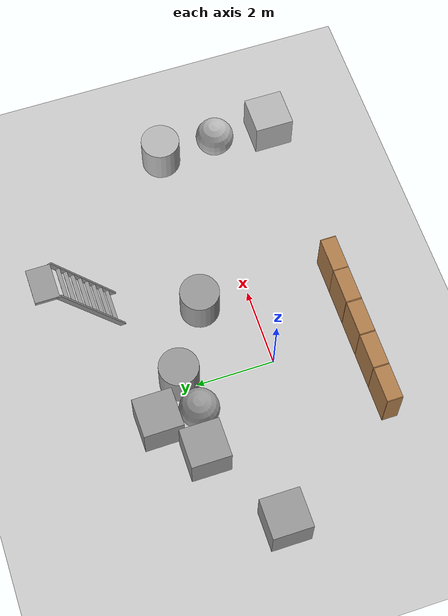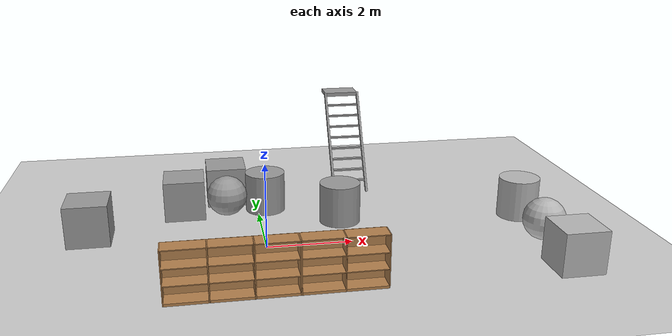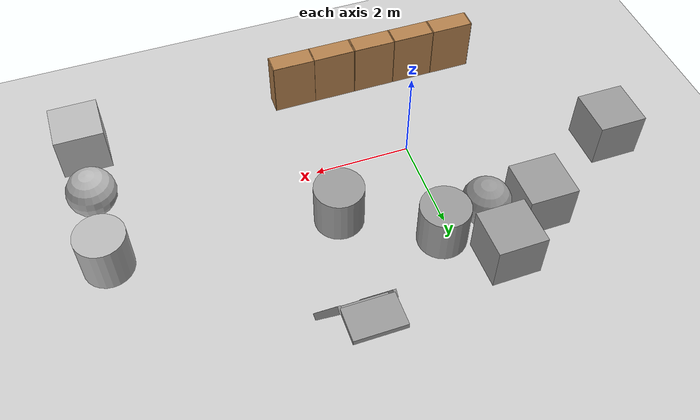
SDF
<sdf version="1.6">
 <world name="default">
  <light name="sun" type="directional">
   <pose>0 0 10 0 -0 0</pose>
   <diffuse>0.8 0.8 0.8 1</diffuse>
   <specular>0.1 0.1 0.1 1</specular>
   <attenuation>
    <range>1000</range>
    <constant>0.9</constant>
    <linear>0.01</linear>
    <quadratic>0.001</quadratic>
   </attenuation>
   <direction>-0.5 0.5 -1</direction>
  </light>
  <model name="ground_plane">
   <static>1</static>
   <link name="link">
    <collision name="collision">
     <geometry><plane><normal>0 0 1</normal><size>100 100</size></plane></geometry>
     <surface><friction><ode><mu>100</mu><mu2>50</mu2></ode></friction></surface>
    </collision>
    <visual name="visual">
     <cast_shadows>0</cast_shadows>
     <geometry><plane><normal>0 0 1</normal><size>100 100</size></plane></geometry>
     <material>
      <script><uri>file://media/materials/scripts/gazebo.material</uri><name>Gazebo/Grey</name></script>
     </material>
    </visual>
   </link>
  </model>
  <gravity>0 0 -9.8</gravity>
  <magnetic_field>6e-06 2.3e-05 -4.2e-05</magnetic_field>
  <atmosphere type="adiabatic"/>
  <physics name="default_physics" default="0" type="ode">
   <max_step_size>0.001</max_step_size>
   <real_time_factor>1</real_time_factor>
   <real_time_update_rate>1000</real_time_update_rate>
  </physics>
  <scene><ambient>0.4 0.4 0.4 1</ambient><background>0.7 0.7 0.7 1</background><shadows>1</shadows></scene>
  <spherical_coordinates>
   <surface_model>EARTH_WGS84</surface_model>
   <latitude_deg>0</latitude_deg>
   <longitude_deg>0</longitude_deg>
   <elevation>0</elevation>
   <heading_deg>0</heading_deg>
  </spherical_coordinates>
  <model name="bookshelf">
   <static>1</static>
   <link name="link">
    <inertial><mass>1</mass></inertial>
    <collision name="back">
     <pose>0 0.005 0.6 0 -0 0</pose>
     <geometry><box><size>0.9 0.01 1.2</size></box></geometry>
    </collision>
    <visual name="visual1">
     <pose>0 0.005 0.6 0 -0 0</pose>
     <geometry><box><size>0.9 0.01 1.2</size></box></geometry>
     <material>
      <script><uri>file://media/materials/scripts/gazebo.material</uri><name>Gazebo/Wood</name></script>
     </material>
    </visual>
    <collision name="left_side">
     <pose>0.45 -0.195 0.6 0 -0 0</pose>
     <geometry><box><size>0.02 0.4 1.2</size></box></geometry>
    </collision>
    <visual name="visual2">
     <pose>0.45 -0.195 0.6 0 -0 0</pose>
     <geometry><box><size>0.02 0.4 1.2</size></box></geometry>
     <material>
      <script><uri>file://media/materials/scripts/gazebo.material</uri><name>Gazebo/Wood</name></script>
     </material>
    </visual>
    <collision name="right_side">
     <pose>-0.45 -0.195 0.6 0 -0 0</pose>
     <geometry><box><size>0.02 0.4 1.2</size></box></geometry>
    </collision>
    <visual name="visual3">
     <pose>-0.45 -0.195 0.6 0 -0 0</pose>
     <geometry><box><size>0.02 0.4 1.2</size></box></geometry>
     <material>
      <script><uri>file://media/materials/scripts/gazebo.material</uri><name>Gazebo/Wood</name></script>
     </material>
    </visual>
    <collision name="bottom">
     <pose>0 -0.195 0.03 0 -0 0</pose>
     <geometry><box><size>0.88 0.4 0.06</size></box></geometry>
    </collision>
    <visual name="visual4">
     <pose>0 -0.195 0.03 0 -0 0</pose>
     <geometry><box><size>0.88 0.4 0.06</size></box></geometry>
     <material>
      <script><uri>file://media/materials/scripts/gazebo.material</uri><name>Gazebo/Wood</name></script>
     </material>
    </visual>
    <collision name="top">
     <pose>0 -0.195 1.19 0 -0 0</pose>
     <geometry><box><size>0.88 0.4 0.02</size></box></geometry>
    </collision>
    <visual name="visual5">
     <pose>0 -0.195 1.19 0 -0 0</pose>
     <geometry><box><size>0.88 0.4 0.02</size></box></geometry>
     <material>
      <script><uri>file://media/materials/scripts/gazebo.material</uri><name>Gazebo/Wood</name></script>
     </material>
    </visual>
    <collision name="low_shelf">
     <pose>0 -0.195 0.43 0 -0 0</pose>
     <geometry><box><size>0.88 0.4 0.02</size></box></geometry>
    </collision>
    <visual name="visual6">
     <pose>0 -0.195 0.43 0 -0 0</pose>
     <geometry><box><size>0.88 0.4 0.02</size></box></geometry>
     <material>
      <script><uri>file://media/materials/scripts/gazebo.material</uri><name>Gazebo/Wood</name></script>
     </material>
    </visual>
    <collision name="high_shelf">
     <pose>0 -0.195 0.8 0 -0 0</pose>
     <geometry><box><size>0.88 0.4 0.02</size></box></geometry>
    </collision>
    <visual name="visual7">
     <pose>0 -0.195 0.8 0 -0 0</pose>
     <geometry><box><size>0.88 0.4 0.02</size></box></geometry>
     <material>
      <script><uri>file://media/materials/scripts/gazebo.material</uri><name>Gazebo/Wood</name></script>
     </material>
    </visual>
   </link>
   <pose>0.921 -2 0 0 -0 0</pose>
  </model>
  <model name="bookshelf_clone">
   <static>1</static>
   <link name="link">
    <inertial><mass>1</mass></inertial>
    <collision name="back">
     <pose>0 0.005 0.6 0 -0 0</pose>
     <geometry><box><size>0.9 0.01 1.2</size></box></geometry>
    </collision>
    <visual name="visual1">
     <pose>0 0.005 0.6 0 -0 0</pose>
     <geometry><box><size>0.9 0.01 1.2</size></box></geometry>
     <material>
      <script><uri>file://media/materials/scripts/gazebo.material</uri><name>Gazebo/Wood</name></script>
     </material>
    </visual>
    <collision name="left_side">
     <pose>0.45 -0.195 0.6 0 -0 0</pose>
     <geometry><box><size>0.02 0.4 1.2</size></box></geometry>
    </collision>
    <visual name="visual2">
     <pose>0.45 -0.195 0.6 0 -0 0</pose>
     <geometry><box><size>0.02 0.4 1.2</size></box></geometry>
     <material>
      <script><uri>file://media/materials/scripts/gazebo.material</uri><name>Gazebo/Wood</name></script>
     </material>
    </visual>
    <collision name="right_side">
     <pose>-0.45 -0.195 0.6 0 -0 0</pose>
     <geometry><box><size>0.02 0.4 1.2</size></box></geometry>
    </collision>
    <visual name="visual3">
     <pose>-0.45 -0.195 0.6 0 -0 0</pose>
     <geometry><box><size>0.02 0.4 1.2</size></box></geometry>
     <material>
      <script><uri>file://media/materials/scripts/gazebo.material</uri><name>Gazebo/Wood</name></script>
     </material>
    </visual>
    <collision name="bottom">
     <pose>0 -0.195 0.03 0 -0 0</pose>
     <geometry><box><size>0.88 0.4 0.06</size></box></geometry>
    </collision>
    <visual name="visual4">
     <pose>0 -0.195 0.03 0 -0 0</pose>
     <geometry><box><size>0.88 0.4 0.06</size></box></geometry>
     <material>
      <script><uri>file://media/materials/scripts/gazebo.material</uri><name>Gazebo/Wood</name></script>
     </material>
    </visual>
    <collision name="top">
     <pose>0 -0.195 1.19 0 -0 0</pose>
     <geometry><box><size>0.88 0.4 0.02</size></box></geometry>
    </collision>
    <visual name="visual5">
     <pose>0 -0.195 1.19 0 -0 0</pose>
     <geometry><box><size>0.88 0.4 0.02</size></box></geometry>
     <material>
      <script><uri>file://media/materials/scripts/gazebo.material</uri><name>Gazebo/Wood</name></script>
     </material>
    </visual>
    <collision name="low_shelf">
     <pose>0 -0.195 0.43 0 -0 0</pose>
     <geometry><box><size>0.88 0.4 0.02</size></box></geometry>
    </collision>
    <visual name="visual6">
     <pose>0 -0.195 0.43 0 -0 0</pose>
     <geometry><box><size>0.88 0.4 0.02</size></box></geometry>
     <material>
      <script><uri>file://media/materials/scripts/gazebo.material</uri><name>Gazebo/Wood</name></script>
     </material>
    </visual>
    <collision name="high_shelf">
     <pose>0 -0.195 0.8 0 -0 0</pose>
     <geometry><box><size>0.88 0.4 0.02</size></box></geometry>
    </collision>
    <visual name="visual7">
     <pose>0 -0.195 0.8 0 -0 0</pose>
     <geometry><box><size>0.88 0.4 0.02</size></box></geometry>
     <material>
      <script><uri>file://media/materials/scripts/gazebo.material</uri><name>Gazebo/Wood</name></script>
     </material>
    </visual>
   </link>
   <pose>-0.912 -2 0 0 -0 0</pose>
  </model>
  <model name="bookshelf_clone_0">
   <static>1</static>
   <link name="link">
    <inertial><mass>1</mass></inertial>
    <collision name="back">
     <pose>0 0.005 0.6 0 -0 0</pose>
     <geometry><box><size>0.9 0.01 1.2</size></box></geometry>
    </collision>
    <visual name="visual1">
     <pose>0 0.005 0.6 0 -0 0</pose>
     <geometry><box><size>0.9 0.01 1.2</size></box></geometry>
     <material>
      <script><uri>file://media/materials/scripts/gazebo.material</uri><name>Gazebo/Wood</name></script>
     </material>
    </visual>
    <collision name="left_side">
     <pose>0.45 -0.195 0.6 0 -0 0</pose>
     <geometry><box><size>0.02 0.4 1.2</size></box></geometry>
    </collision>
    <visual name="visual2">
     <pose>0.45 -0.195 0.6 0 -0 0</pose>
     <geometry><box><size>0.02 0.4 1.2</size></box></geometry>
     <material>
      <script><uri>file://media/materials/scripts/gazebo.material</uri><name>Gazebo/Wood</name></script>
     </material>
    </visual>
    <collision name="right_side">
     <pose>-0.45 -0.195 0.6 0 -0 0</pose>
     <geometry><box><size>0.02 0.4 1.2</size></box></geometry>
    </collision>
    <visual name="visual3">
     <pose>-0.45 -0.195 0.6 0 -0 0</pose>
     <geometry><box><size>0.02 0.4 1.2</size></box></geometry>
     <material>
      <script><uri>file://media/materials/scripts/gazebo.material</uri><name>Gazebo/Wood</name></script>
     </material>
    </visual>
    <collision name="bottom">
     <pose>0 -0.195 0.03 0 -0 0</pose>
     <geometry><box><size>0.88 0.4 0.06</size></box></geometry>
    </collision>
    <visual name="visual4">
     <pose>0 -0.195 0.03 0 -0 0</pose>
     <geometry><box><size>0.88 0.4 0.06</size></box></geometry>
     <material>
      <script><uri>file://media/materials/scripts/gazebo.material</uri><name>Gazebo/Wood</name></script>
     </material>
    </visual>
    <collision name="top">
     <pose>0 -0.195 1.19 0 -0 0</pose>
     <geometry><box><size>0.88 0.4 0.02</size></box></geometry>
    </collision>
    <visual name="visual5">
     <pose>0 -0.195 1.19 0 -0 0</pose>
     <geometry><box><size>0.88 0.4 0.02</size></box></geometry>
     <material>
      <script><uri>file://media/materials/scripts/gazebo.material</uri><name>Gazebo/Wood</name></script>
     </material>
    </visual>
    <collision name="low_shelf">
     <pose>0 -0.195 0.43 0 -0 0</pose>
     <geometry><box><size>0.88 0.4 0.02</size></box></geometry>
    </collision>
    <visual name="visual6">
     <pose>0 -0.195 0.43 0 -0 0</pose>
     <geometry><box><size>0.88 0.4 0.02</size></box></geometry>
     <material>
      <script><uri>file://media/materials/scripts/gazebo.material</uri><name>Gazebo/Wood</name></script>
     </material>
    </visual>
    <collision name="high_shelf">
     <pose>0 -0.195 0.8 0 -0 0</pose>
     <geometry><box><size>0.88 0.4 0.02</size></box></geometry>
    </collision>
    <visual name="visual7">
     <pose>0 -0.195 0.8 0 -0 0</pose>
     <geometry><box><size>0.88 0.4 0.02</size></box></geometry>
     <material>
      <script><uri>file://media/materials/scripts/gazebo.material</uri><name>Gazebo/Wood</name></script>
     </material>
    </visual>
   </link>
   <pose>1.824 -2 0 0 -0 0</pose>
  </model>
  <model name="bookshelf_clone_0_clone">
   <static>1</static>
   <link name="link">
    <inertial><mass>1</mass></inertial>
    <collision name="back">
     <pose>0 0.005 0.6 0 -0 0</pose>
     <geometry><box><size>0.9 0.01 1.2</size></box></geometry>
    </collision>
    <visual name="visual1">
     <pose>0 0.005 0.6 0 -0 0</pose>
     <geometry><box><size>0.9 0.01 1.2</size></box></geometry>
     <material>
      <script><uri>file://media/materials/scripts/gazebo.material</uri><name>Gazebo/Wood</name></script>
     </material>
    </visual>
    <collision name="left_side">
     <pose>0.45 -0.195 0.6 0 -0 0</pose>
     <geometry><box><size>0.02 0.4 1.2</size></box></geometry>
    </collision>
    <visual name="visual2">
     <pose>0.45 -0.195 0.6 0 -0 0</pose>
     <geometry><box><size>0.02 0.4 1.2</size></box></geometry>
     <material>
      <script><uri>file://media/materials/scripts/gazebo.material</uri><name>Gazebo/Wood</name></script>
     </material>
    </visual>
    <collision name="right_side">
     <pose>-0.45 -0.195 0.6 0 -0 0</pose>
     <geometry><box><size>0.02 0.4 1.2</size></box></geometry>
    </collision>
    <visual name="visual3">
     <pose>-0.45 -0.195 0.6 0 -0 0</pose>
     <geometry><box><size>0.02 0.4 1.2</size></box></geometry>
     <material>
      <script><uri>file://media/materials/scripts/gazebo.material</uri><name>Gazebo/Wood</name></script>
     </material>
    </visual>
    <collision name="bottom">
     <pose>0 -0.195 0.03 0 -0 0</pose>
     <geometry><box><size>0.88 0.4 0.06</size></box></geometry>
    </collision>
    <visual name="visual4">
     <pose>0 -0.195 0.03 0 -0 0</pose>
     <geometry><box><size>0.88 0.4 0.06</size></box></geometry>
     <material>
      <script><uri>file://media/materials/scripts/gazebo.material</uri><name>Gazebo/Wood</name></script>
     </material>
    </visual>
    <collision name="top">
     <pose>0 -0.195 1.19 0 -0 0</pose>
     <geometry><box><size>0.88 0.4 0.02</size></box></geometry>
    </collision>
    <visual name="visual5">
     <pose>0 -0.195 1.19 0 -0 0</pose>
     <geometry><box><size>0.88 0.4 0.02</size></box></geometry>
     <material>
      <script><uri>file://media/materials/scripts/gazebo.material</uri><name>Gazebo/Wood</name></script>
     </material>
    </visual>
    <collision name="low_shelf">
     <pose>0 -0.195 0.43 0 -0 0</pose>
     <geometry><box><size>0.88 0.4 0.02</size></box></geometry>
    </collision>
    <visual name="visual6">
     <pose>0 -0.195 0.43 0 -0 0</pose>
     <geometry><box><size>0.88 0.4 0.02</size></box></geometry>
     <material>
      <script><uri>file://media/materials/scripts/gazebo.material</uri><name>Gazebo/Wood</name></script>
     </material>
    </visual>
    <collision name="high_shelf">
     <pose>0 -0.195 0.8 0 -0 0</pose>
     <geometry><box><size>0.88 0.4 0.02</size></box></geometry>
    </collision>
    <visual name="visual7">
     <pose>0 -0.195 0.8 0 -0 0</pose>
     <geometry><box><size>0.88 0.4 0.02</size></box></geometry>
     <material>
      <script><uri>file://media/materials/scripts/gazebo.material</uri><name>Gazebo/Wood</name></script>
     </material>
    </visual>
   </link>
   <pose>0 -2 0 0 -0 0</pose>
  </model>
  <model name="bookshelf_clone_0_clone_0">
   <static>1</static>
   <link name="link">
    <inertial><mass>1</mass></inertial>
    <collision name="back">
     <pose>0 0.005 0.6 0 -0 0</pose>
     <geometry><box><size>0.9 0.01 1.2</size></box></geometry>
    </collision>
    <visual name="visual1">
     <pose>0 0.005 0.6 0 -0 0</pose>
     <geometry><box><size>0.9 0.01 1.2</size></box></geometry>
     <material>
      <script><uri>file://media/materials/scripts/gazebo.material</uri><name>Gazebo/Wood</name></script>
     </material>
    </visual>
    <collision name="left_side">
     <pose>0.45 -0.195 0.6 0 -0 0</pose>
     <geometry><box><size>0.02 0.4 1.2</size></box></geometry>
    </collision>
    <visual name="visual2">
     <pose>0.45 -0.195 0.6 0 -0 0</pose>
     <geometry><box><size>0.02 0.4 1.2</size></box></geometry>
     <material>
      <script><uri>file://media/materials/scripts/gazebo.material</uri><name>Gazebo/Wood</name></script>
     </material>
    </visual>
    <collision name="right_side">
     <pose>-0.45 -0.195 0.6 0 -0 0</pose>
     <geometry><box><size>0.02 0.4 1.2</size></box></geometry>
    </collision>
    <visual name="visual3">
     <pose>-0.45 -0.195 0.6 0 -0 0</pose>
     <geometry><box><size>0.02 0.4 1.2</size></box></geometry>
     <material>
      <script><uri>file://media/materials/scripts/gazebo.material</uri><name>Gazebo/Wood</name></script>
     </material>
    </visual>
    <collision name="bottom">
     <pose>0 -0.195 0.03 0 -0 0</pose>
     <geometry><box><size>0.88 0.4 0.06</size></box></geometry>
    </collision>
    <visual name="visual4">
     <pose>0 -0.195 0.03 0 -0 0</pose>
     <geometry><box><size>0.88 0.4 0.06</size></box></geometry>
     <material>
      <script><uri>file://media/materials/scripts/gazebo.material</uri><name>Gazebo/Wood</name></script>
     </material>
    </visual>
    <collision name="top">
     <pose>0 -0.195 1.19 0 -0 0</pose>
     <geometry><box><size>0.88 0.4 0.02</size></box></geometry>
    </collision>
    <visual name="visual5">
     <pose>0 -0.195 1.19 0 -0 0</pose>
     <geometry><box><size>0.88 0.4 0.02</size></box></geometry>
     <material>
      <script><uri>file://media/materials/scripts/gazebo.material</uri><name>Gazebo/Wood</name></script>
     </material>
    </visual>
    <collision name="low_shelf">
     <pose>0 -0.195 0.43 0 -0 0</pose>
     <geometry><box><size>0.88 0.4 0.02</size></box></geometry>
    </collision>
    <visual name="visual6">
     <pose>0 -0.195 0.43 0 -0 0</pose>
     <geometry><box><size>0.88 0.4 0.02</size></box></geometry>
     <material>
      <script><uri>file://media/materials/scripts/gazebo.material</uri><name>Gazebo/Wood</name></script>
     </material>
    </visual>
    <collision name="high_shelf">
     <pose>0 -0.195 0.8 0 -0 0</pose>
     <geometry><box><size>0.88 0.4 0.02</size></box></geometry>
    </collision>
    <visual name="visual7">
     <pose>0 -0.195 0.8 0 -0 0</pose>
     <geometry><box><size>0.88 0.4 0.02</size></box></geometry>
     <material>
      <script><uri>file://media/materials/scripts/gazebo.material</uri><name>Gazebo/Wood</name></script>
     </material>
    </visual>
   </link>
   <pose>-1.824 -2 0 0 -0 0</pose>
  </model>
  <model name="unit_box_0">
   <pose>-1.82716 2.37173 0.5 0 -0 0</pose>
   <link name="link">
    <inertial>
     <mass>1</mass>
     <inertia>
      <ixx>0.166667</ixx>
      <ixy>0</ixy>
      <ixz>0</ixz>
      <iyy>0.166667</iyy>
      <iyz>0</iyz>
      <izz>0.166667</izz>
     </inertia>
    </inertial>
    <collision name="collision"><geometry><box><size>1 1 1</size></box></geometry></collision>
    <visual name="visual">
     <geometry><box><size>1 1 1</size></box></geometry>
     <material>
      <script><name>Gazebo/Grey</name><uri>file://media/materials/scripts/gazebo.material</uri></script>
     </material>
    </visual>
   </link>
  </model>
  <model name="unit_box_1">
   <pose>-4.02409 1.13922 0.5 0 -0 0</pose>
   <link name="link">
    <inertial>
     <mass>1</mass>
     <inertia>
      <ixx>0.166667</ixx>
      <ixy>0</ixy>
      <ixz>0</ixz>
      <iyy>0.166667</iyy>
      <iyz>0</iyz>
      <izz>0.166667</izz>
     </inertia>
    </inertial>
    <collision name="collision"><geometry><box><size>1 1 1</size></box></geometry></collision>
    <visual name="visual">
     <geometry><box><size>1 1 1</size></box></geometry>
     <material>
      <script><name>Gazebo/Grey</name><uri>file://media/materials/scripts/gazebo.material</uri></script>
     </material>
    </visual>
   </link>
  </model>
  <model name="unit_cylinder_0">
   <pose>1.94796 1.28763 0.499991 0 -0 0</pose>
   <link name="link">
    <inertial>
     <mass>1</mass>
     <inertia><ixx>0.145833</ixx><ixy>0</ixy><ixz>0</ixz><iyy>0.145833</iyy><iyz>0</iyz><izz>0.125</izz></inertia>
    </inertial>
    <collision name="collision">
     <geometry><cylinder><radius>0.5</radius><length>1</length></cylinder></geometry>
    </collision>
    <visual name="visual">
     <geometry><cylinder><radius>0.5</radius><length>1</length></cylinder></geometry>
     <material>
      <script><name>Gazebo/Grey</name><uri>file://media/materials/scripts/gazebo.material</uri></script>
     </material>
    </visual>
   </link>
  </model>
  <model name="unit_sphere_0_0">
   <pose>-0.773629 2.18098 0.5 0.015309 -0.007956 -0.008342</pose>
   <link name="link">
    <inertial>
     <mass>1</mass>
     <inertia><ixx>0.1</ixx><ixy>0</ixy><ixz>0</ixz><iyy>0.1</iyy><iyz>0</iyz><izz>0.1</izz></inertia>
    </inertial>
    <collision name="collision"><geometry><sphere><radius>0.5</radius></sphere></geometry></collision>
    <visual name="visual">
     <geometry><sphere><radius>0.5</radius></sphere></geometry>
     <material>
      <script><name>Gazebo/Grey</name><uri>file://media/materials/scripts/gazebo.material</uri></script>
     </material>
    </visual>
   </link>
  </model>
  <model name="unit_box_2">
   <pose>-0.75389 3.2064 0.5 0 -0 0.009665</pose>
   <link name="link">
    <inertial>
     <mass>1</mass>
     <inertia>
      <ixx>0.166667</ixx>
      <ixy>0</ixy>
      <ixz>0</ixz>
      <iyy>0.166667</iyy>
      <iyz>0</iyz>
      <izz>0.166667</izz>
     </inertia>
    </inertial>
    <collision name="collision"><geometry><box><size>1 1 1</size></box></geometry></collision>
    <visual name="visual">
     <geometry><box><size>1 1 1</size></box></geometry>
     <material>
      <script><name>Gazebo/Grey</name><uri>file://media/materials/scripts/gazebo.material</uri></script>
     </material>
    </visual>
   </link>
  </model>
  <model name="unit_cylinder_1">
   <pose>0.21065 2.38096 0.499991 0 0 -1.9e-05</pose>
   <link name="link">
    <inertial>
     <mass>1</mass>
     <inertia><ixx>0.145833</ixx><ixy>0</ixy><ixz>0</ixz><iyy>0.145833</iyy><iyz>0</iyz><izz>0.125</izz></inertia>
    </inertial>
    <collision name="collision">
     <geometry><cylinder><radius>0.5</radius><length>1</length></cylinder></geometry>
    </collision>
    <visual name="visual">
     <geometry><cylinder><radius>0.5</radius><length>1</length></cylinder></geometry>
     <material>
      <script><name>Gazebo/Grey</name><uri>file://media/materials/scripts/gazebo.material</uri></script>
     </material>
    </visual>
   </link>
  </model>
  <model name="textured_shapes">
   <pose>6.44513 -0.58966 0.5 0 -0 0</pose>
   <link name="box">
    <pose>0 -1.5 0 0 -0 0</pose>
    <collision name="collision"><geometry><box><size>1 1 1</size></box></geometry></collision>
    <visual name="visual">
     <geometry><box><size>1 1 1</size></box></geometry>
     <material>
      <script>
       <uri>model://textured_shapes/materials/scripts</uri>
       <uri>model://textured_shapes/materials/textures</uri>
       <name>TexturedShape/Squares</name>
      </script>
     </material>
    </visual>
    <inertial>
     <inertia><ixx>1</ixx><ixy>0</ixy><ixz>0</ixz><iyy>1</iyy><iyz>0</iyz><izz>1</izz></inertia>
     <mass>1</mass>
    </inertial>
   </link>
   <link name="sphere">
    <collision name="collision"><geometry><sphere><radius>0.5</radius></sphere></geometry></collision>
    <visual name="visual">
     <geometry><sphere><radius>0.5</radius></sphere></geometry>
     <material>
      <script>
       <uri>model://textured_shapes/materials/scripts</uri>
       <uri>model://textured_shapes/materials/textures</uri>
       <name>TexturedShape/Squares</name>
      </script>
     </material>
    </visual>
    <inertial>
     <inertia><ixx>1</ixx><ixy>0</ixy><ixz>0</ixz><iyy>1</iyy><iyz>0</iyz><izz>1</izz></inertia>
     <mass>1</mass>
    </inertial>
   </link>
   <link name="cylinder">
    <pose>0 1.5 0 0 -0 0</pose>
    <collision name="collision">
     <geometry><cylinder><radius>0.5</radius><length>1</length></cylinder></geometry>
    </collision>
    <visual name="visual">
     <geometry><cylinder><radius>0.5</radius><length>1</length></cylinder></geometry>
     <material>
      <script>
       <uri>model://textured_shapes/materials/scripts</uri>
       <uri>model://textured_shapes/materials/textures</uri>
       <name>TexturedShape/Squares</name>
      </script>
     </material>
    </visual>
    <inertial>
     <inertia><ixx>1</ixx><ixy>0</ixy><ixz>0</ixz><iyy>1</iyy><iyz>0</iyz><izz>1</izz></inertia>
     <mass>1</mass>
    </inertial>
   </link>
  </model>
  <model name="ladder_60deg_0rails">
   <static>1</static>
   <link name="step0">
    <pose>0 0.15396 0.266667 0 -0 0</pose>
    <inertial>
     <mass>9.75482</mass>
     <inertia>
      <ixx>0.00957124</ixx>
      <iyy>0.65963</iyy>
      <izz>0.666842</izz>
      <ixy>0</ixy>
      <ixz>0</ixz>
      <iyz>0</iyz>
     </inertia>
    </inertial>
    <collision name="collision"><geometry><box><size>0.9 0.1016 0.0381</size></box></geometry></collision>
    <visual name="visual">
     <geometry><box><size>0.9 0.1016 0.0381</size></box></geometry>
     <material>
      <script><uri>file://media/materials/scripts/gazebo.material</uri><name>Gazebo/Grey</name></script>
     </material>
    </visual>
   </link>
   <link name="step1">
    <pose>0 0.30792 0.533333 0 -0 0</pose>
    <inertial>
     <mass>9.75482</mass>
     <inertia>
      <ixx>0.00957124</ixx>
      <iyy>0.65963</iyy>
      <izz>0.666842</izz>
      <ixy>0</ixy>
      <ixz>0</ixz>
      <iyz>0</iyz>
     </inertia>
    </inertial>
    <collision name="collision"><geometry><box><size>0.9 0.1016 0.0381</size></box></geometry></collision>
    <visual name="visual">
     <geometry><box><size>0.9 0.1016 0.0381</size></box></geometry>
     <material>
      <script><uri>file://media/materials/scripts/gazebo.material</uri><name>Gazebo/Grey</name></script>
     </material>
    </visual>
   </link>
   <link name="step2">
    <pose>0 0.46188 0.8 0 -0 0</pose>
    <inertial>
     <mass>9.75482</mass>
     <inertia>
      <ixx>0.00957124</ixx>
      <iyy>0.65963</iyy>
      <izz>0.666842</izz>
      <ixy>0</ixy>
      <ixz>0</ixz>
      <iyz>0</iyz>
     </inertia>
    </inertial>
    <collision name="collision"><geometry><box><size>0.9 0.1016 0.0381</size></box></geometry></collision>
    <visual name="visual">
     <geometry><box><size>0.9 0.1016 0.0381</size></box></geometry>
     <material>
      <script><uri>file://media/materials/scripts/gazebo.material</uri><name>Gazebo/Grey</name></script>
     </material>
    </visual>
   </link>
   <link name="step3">
    <pose>0 0.61584 1.06667 0 -0 0</pose>
    <inertial>
     <mass>9.75482</mass>
     <inertia>
      <ixx>0.00957124</ixx>
      <iyy>0.65963</iyy>
      <izz>0.666842</izz>
      <ixy>0</ixy>
      <ixz>0</ixz>
      <iyz>0</iyz>
     </inertia>
    </inertial>
    <collision name="collision"><geometry><box><size>0.9 0.1016 0.0381</size></box></geometry></collision>
    <visual name="visual">
     <geometry><box><size>0.9 0.1016 0.0381</size></box></geometry>
     <material>
      <script><uri>file://media/materials/scripts/gazebo.material</uri><name>Gazebo/Grey</name></script>
     </material>
    </visual>
   </link>
   <link name="step4">
    <pose>0 0.7698 1.33333 0 -0 0</pose>
    <inertial>
     <mass>9.75482</mass>
     <inertia>
      <ixx>0.00957124</ixx>
      <iyy>0.65963</iyy>
      <izz>0.666842</izz>
      <ixy>0</ixy>
      <ixz>0</ixz>
      <iyz>0</iyz>
     </inertia>
    </inertial>
    <collision name="collision"><geometry><box><size>0.9 0.1016 0.0381</size></box></geometry></collision>
    <visual name="visual">
     <geometry><box><size>0.9 0.1016 0.0381</size></box></geometry>
     <material>
      <script><uri>file://media/materials/scripts/gazebo.material</uri><name>Gazebo/Grey</name></script>
     </material>
    </visual>
   </link>
   <link name="step5">
    <pose>0 0.92376 1.6 0 -0 0</pose>
    <inertial>
     <mass>9.75482</mass>
     <inertia>
      <ixx>0.00957124</ixx>
      <iyy>0.65963</iyy>
      <izz>0.666842</izz>
      <ixy>0</ixy>
      <ixz>0</ixz>
      <iyz>0</iyz>
     </inertia>
    </inertial>
    <collision name="collision"><geometry><box><size>0.9 0.1016 0.0381</size></box></geometry></collision>
    <visual name="visual">
     <geometry><box><size>0.9 0.1016 0.0381</size></box></geometry>
     <material>
      <script><uri>file://media/materials/scripts/gazebo.material</uri><name>Gazebo/Grey</name></script>
     </material>
    </visual>
   </link>
   <link name="step6">
    <pose>0 1.07772 1.86667 0 -0 0</pose>
    <inertial>
     <mass>9.75482</mass>
     <inertia>
      <ixx>0.00957124</ixx>
      <iyy>0.65963</iyy>
      <izz>0.666842</izz>
      <ixy>0</ixy>
      <ixz>0</ixz>
      <iyz>0</iyz>
     </inertia>
    </inertial>
    <collision name="collision"><geometry><box><size>0.9 0.1016 0.0381</size></box></geometry></collision>
    <visual name="visual">
     <geometry><box><size>0.9 0.1016 0.0381</size></box></geometry>
     <material>
      <script><uri>file://media/materials/scripts/gazebo.material</uri><name>Gazebo/Grey</name></script>
     </material>
    </visual>
   </link>
   <link name="step7">
    <pose>0 1.23168 2.13333 0 -0 0</pose>
    <inertial>
     <mass>9.75482</mass>
     <inertia>
      <ixx>0.00957124</ixx>
      <iyy>0.65963</iyy>
      <izz>0.666842</izz>
      <ixy>0</ixy>
      <ixz>0</ixz>
      <iyz>0</iyz>
     </inertia>
    </inertial>
    <collision name="collision"><geometry><box><size>0.9 0.1016 0.0381</size></box></geometry></collision>
    <visual name="visual">
     <geometry><box><size>0.9 0.1016 0.0381</size></box></geometry>
     <material>
      <script><uri>file://media/materials/scripts/gazebo.material</uri><name>Gazebo/Grey</name></script>
     </material>
    </visual>
   </link>
   <link name="landing">
    <pose>0 1.68564 2.4 0 -0 0</pose>
    <inertial>
     <mass>57.6072</mass>
     <inertia><ixx>1.73518</ixx><iyy>3.89545</iyy><izz>5.6167</izz><ixy>0</ixy><ixz>0</ixz><iyz>0</iyz></inertia>
    </inertial>
    <collision name="collision"><geometry><box><size>0.9 0.6 0.1016</size></box></geometry></collision>
    <visual name="visual">
     <geometry><box><size>0.9 0.6 0.1016</size></box></geometry>
     <material>
      <script><uri>file://media/materials/scripts/gazebo.material</uri><name>Gazebo/Grey</name></script>
     </material>
    </visual>
   </link>
   <link name="left_side_wall">
    <pose>-0.45 0.69282 1.2 1.0472 -0 0</pose>
    <collision name="collision"><geometry><box><size>0.0508 2.85128 0.13</size></box></geometry></collision>
    <visual name="visual">
     <geometry><box><size>0.0508 2.85128 0.13</size></box></geometry>
     <material>
      <script><uri>file://media/materials/scripts/gazebo.material</uri><name>Gazebo/Grey</name></script>
     </material>
    </visual>
   </link>
   <link name="right_side_wall">
    <pose>0.45 0.69282 1.2 1.0472 -0 0</pose>
    <collision name="collision"><geometry><box><size>0.0508 2.85128 0.13</size></box></geometry></collision>
    <visual name="visual">
     <geometry><box><size>0.0508 2.85128 0.13</size></box></geometry>
     <material>
      <script><uri>file://media/materials/scripts/gazebo.material</uri><name>Gazebo/Grey</name></script>
     </material>
    </visual>
   </link>
   <pose>2.62921 3.25169 0 0 -0 0</pose>
  </model>
 </world>
</sdf>
